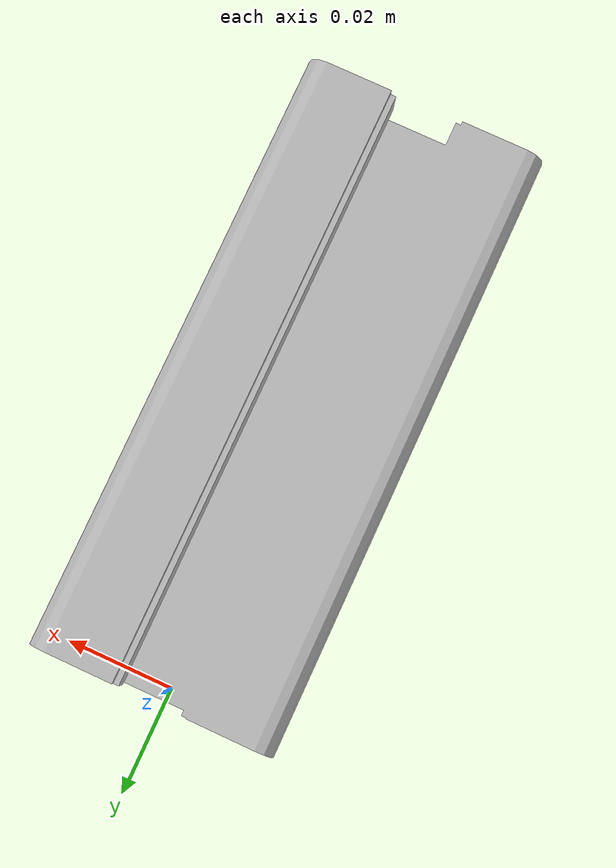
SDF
<?xml version="1.0" ?>
<sdf version="1.3">
  <model name="S40_40">
    <static>true</static>
    <link name="link">
      <pose>0 0 0 0 0 0</pose>
      <collision name="collision">
        <geometry>
          <mesh>
            <uri>model://S40_40/meshes/S40_40.dae</uri>
          </mesh>
        </geometry>
      </collision>
      <visual name="visual">
        <geometry>
          <mesh>
            <uri>model://S40_40/meshes/S40_40.dae</uri>
          </mesh>
        </geometry>
      </visual>
    </link>
  </model>
</sdf>
